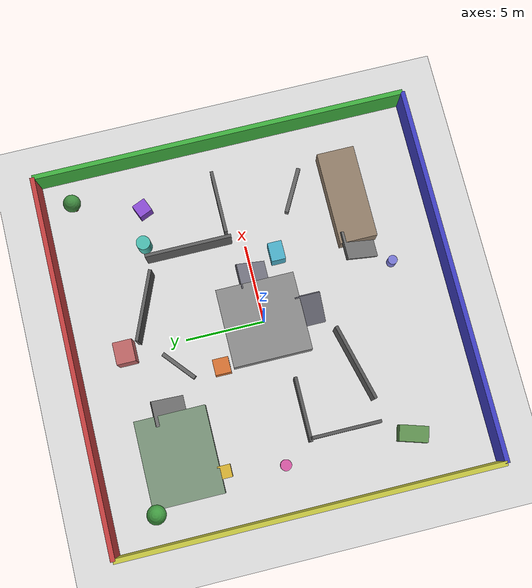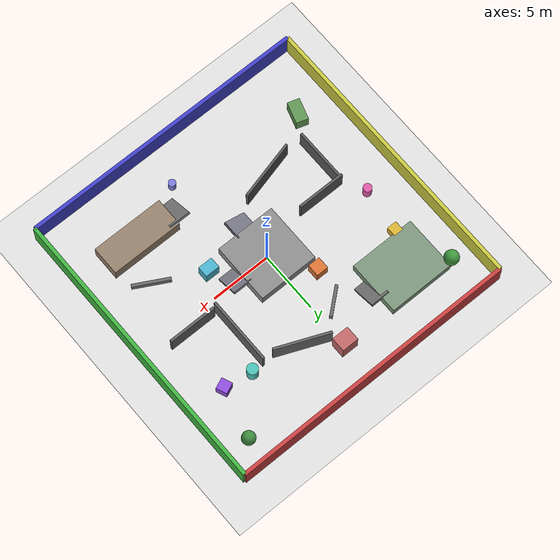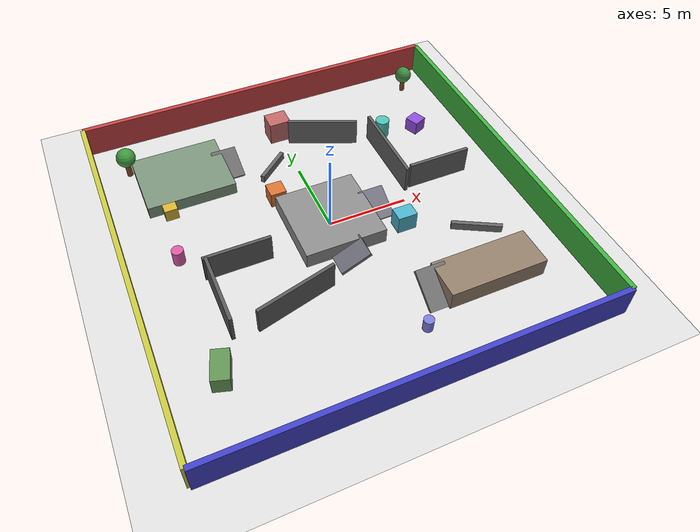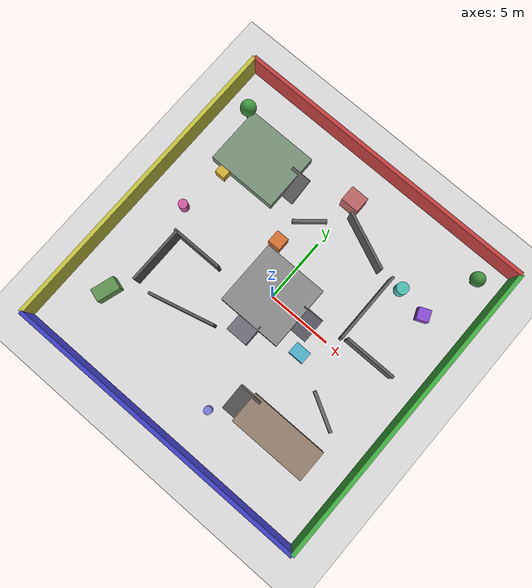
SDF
<?xml version="1.0" ?>
<sdf version="1.8">
  <world name="large_env">

    <!-- Physics -->
    <physics name="1ms" type="ignored">
      <max_step_size>0.001</max_step_size>
      <real_time_factor>1.0</real_time_factor>
    </physics>

    <!-- Gazebo systems -->
    <plugin filename="ignition-gazebo-physics-system"
            name="ignition::gazebo::systems::Physics"/>
    <plugin filename="ignition-gazebo-user-commands-system"
            name="ignition::gazebo::systems::UserCommands"/>
    <plugin filename="ignition-gazebo-scene-broadcaster-system"
            name="ignition::gazebo::systems::SceneBroadcaster"/>
    <plugin filename="ignition-gazebo-sensors-system"
            name="ignition::gazebo::systems::Sensors">
      <render_engine>ogre2</render_engine>
    </plugin>

    <!-- Light -->
    <light name="sun" type="directional">
      <cast_shadows>true</cast_shadows>
      <pose>0 0 25 0 0 0</pose>
      <diffuse>0.95 0.95 0.95 1</diffuse>
      <specular>0.20 0.20 0.20 1</specular>
      <direction>-0.35 0.2 -0.9</direction>
    </light>

    <!-- MAIN GROUND -->
    <model name="ground_plane">
      <static>true</static>
      <link name="link">
        <collision name="collision">
          <geometry>
            <plane>
              <normal>0 0 1</normal>
              <size>60 60</size>
            </plane>
          </geometry>
        </collision>
        <visual name="visual">
          <geometry>
            <plane>
              <normal>0 0 1</normal>
              <size>60 60</size>
            </plane>
          </geometry>
          <material>
            <ambient>0.80 0.80 0.80 1</ambient>
            <diffuse>0.87 0.87 0.87 1</diffuse>
            <specular>0.05 0.05 0.05 1</specular>
          </material>
        </visual>
      </link>
    </model>

    <!-- OUTER WALLS -->
    <!-- Map boundary approx: x,y in [-12, 12] -->
    <model name="wall_north">
      <static>true</static>
      <pose>0 12 1.0 0 0 0</pose>
      <link name="link">
        <collision name="collision">
          <geometry><box><size>24 0.3 2.0</size></box></geometry>
        </collision>
        <visual name="visual">
          <geometry><box><size>24 0.3 2.0</size></box></geometry>
          <material>
            <ambient>0.62 0.20 0.20 1</ambient>
            <diffuse>0.78 0.25 0.25 1</diffuse>
            <specular>0.08 0.08 0.08 1</specular>
          </material>
        </visual>
      </link>
    </model>

    <model name="wall_south">
      <static>true</static>
      <pose>0 -12 1.0 0 0 0</pose>
      <link name="link">
        <collision name="collision">
          <geometry><box><size>24 0.3 2.0</size></box></geometry>
        </collision>
        <visual name="visual">
          <geometry><box><size>24 0.3 2.0</size></box></geometry>
          <material>
            <ambient>0.20 0.20 0.62 1</ambient>
            <diffuse>0.25 0.25 0.78 1</diffuse>
            <specular>0.08 0.08 0.08 1</specular>
          </material>
        </visual>
      </link>
    </model>

    <model name="wall_east">
      <static>true</static>
      <pose>12 0 1.0 0 0 0</pose>
      <link name="link">
        <collision name="collision">
          <geometry><box><size>0.3 24 2.0</size></box></geometry>
        </collision>
        <visual name="visual">
          <geometry><box><size>0.3 24 2.0</size></box></geometry>
          <material>
            <ambient>0.20 0.55 0.20 1</ambient>
            <diffuse>0.25 0.70 0.25 1</diffuse>
            <specular>0.08 0.08 0.08 1</specular>
          </material>
        </visual>
      </link>
    </model>

    <model name="wall_west">
      <static>true</static>
      <pose>-12 0 1.0 0 0 0</pose>
      <link name="link">
        <collision name="collision">
          <geometry><box><size>0.3 24 2.0</size></box></geometry>
        </collision>
        <visual name="visual">
          <geometry><box><size>0.3 24 2.0</size></box></geometry>
          <material>
            <ambient>0.62 0.62 0.20 1</ambient>
            <diffuse>0.78 0.78 0.25 1</diffuse>
            <specular>0.08 0.08 0.08 1</specular>
          </material>
        </visual>
      </link>
    </model>

    <!-- CENTRAL RAISED PLATFORM -->
    <!-- top at z = 1.0 -->
    <model name="central_platform">
      <static>true</static>
      <pose>0 0 0.5 0 0 0</pose>
      <link name="link">
        <collision name="collision">
          <geometry><box><size>5.0 5.0 1.0</size></box></geometry>
        </collision>
        <visual name="visual">
          <geometry><box><size>5.0 5.0 1.0</size></box></geometry>
          <material>
            <ambient>0.45 0.45 0.45 1</ambient>
            <diffuse>0.55 0.55 0.55 1</diffuse>
            <specular>0.08 0.08 0.08 1</specular>
          </material>
        </visual>
      </link>
    </model>

    <!-- Ramps to central platform -->
    <!-- Ramp dimensions: length 2.0, height 1.0 -->
    <!-- pitch ~= atan(1/2) = 0.463648 -->
    <model name="ramp_south_to_platform">
      <static>true</static>
      <pose>0 -3.0 0.5 0 -0.463648 0</pose>
      <link name="link">
        <collision name="collision">
          <geometry><box><size>2.0 1.6 0.2</size></box></geometry>
        </collision>
        <visual name="visual">
          <geometry><box><size>2.0 1.6 0.2</size></box></geometry>
          <material>
            <ambient>0.35 0.35 0.38 1</ambient>
            <diffuse>0.45 0.45 0.50 1</diffuse>
            <specular>0.08 0.08 0.08 1</specular>
          </material>
        </visual>
      </link>
    </model>

    <model name="ramp_east_to_platform">
      <static>true</static>
      <pose>3.0 0 0.5 0 -0.463648 1.5708</pose>
      <link name="link">
        <collision name="collision">
          <geometry><box><size>2.0 1.6 0.2</size></box></geometry>
        </collision>
        <visual name="visual">
          <geometry><box><size>2.0 1.6 0.2</size></box></geometry>
          <material>
            <ambient>0.35 0.35 0.38 1</ambient>
            <diffuse>0.45 0.45 0.50 1</diffuse>
            <specular>0.08 0.08 0.08 1</specular>
          </material>
        </visual>
      </link>
    </model>

    <!-- NORTH-WEST TERRACE -->
    <!-- elevated zone -->
    <model name="nw_terrace">
      <static>true</static>
      <pose>-7.0 7.0 0.4 0 0 0</pose>
      <link name="link">
        <collision name="collision">
          <geometry><box><size>5.5 4.5 0.8</size></box></geometry>
        </collision>
        <visual name="visual">
          <geometry><box><size>5.5 4.5 0.8</size></box></geometry>
          <material>
            <ambient>0.40 0.46 0.40 1</ambient>
            <diffuse>0.48 0.58 0.48 1</diffuse>
            <specular>0.05 0.05 0.05 1</specular>
          </material>
        </visual>
      </link>
    </model>

    <model name="nw_terrace_ramp">
      <static>true</static>
      <pose>-4.1 7.0 0.4 0 -0.380506 1.5708</pose>
      <link name="link">
        <collision name="collision">
          <geometry><box><size>2.1 1.6 0.2</size></box></geometry>
        </collision>
        <visual name="visual">
          <geometry><box><size>2.1 1.6 0.2</size></box></geometry>
          <material>
            <ambient>0.32 0.32 0.32 1</ambient>
            <diffuse>0.42 0.42 0.42 1</diffuse>
            <specular>0.05 0.05 0.05 1</specular>
          </material>
        </visual>
      </link>
    </model>

    <!-- SOUTH-EAST LONG PLATFORM -->
    <model name="se_platform">
      <static>true</static>
      <pose>6.5 -7.0 0.6 0 0 0</pose>
      <link name="link">
        <collision name="collision">
          <geometry><box><size>6.0 2.4 1.2</size></box></geometry>
        </collision>
        <visual name="visual">
          <geometry><box><size>6.0 2.4 1.2</size></box></geometry>
          <material>
            <ambient>0.48 0.42 0.36 1</ambient>
            <diffuse>0.58 0.50 0.42 1</diffuse>
            <specular>0.05 0.05 0.05 1</specular>
          </material>
        </visual>
      </link>
    </model>

    <model name="se_platform_ramp_west">
      <static>true</static>
      <pose>3.3 -7.0 0.6 0 -0.54042 1.5708</pose>
      <link name="link">
        <collision name="collision">
          <geometry><box><size>2.4 1.8 0.2</size></box></geometry>
        </collision>
        <visual name="visual">
          <geometry><box><size>2.4 1.8 0.2</size></box></geometry>
          <material>
            <ambient>0.34 0.34 0.34 1</ambient>
            <diffuse>0.44 0.44 0.44 1</diffuse>
            <specular>0.05 0.05 0.05 1</specular>
          </material>
        </visual>
      </link>
    </model>

    <!-- CORRIDOR / MAZE-LIKE WALLS -->
    <model name="corridor_wall_1">
      <static>true</static>
      <pose>-6.0 -1.0 0.9 0 0 0.0</pose>
      <link name="link">
        <collision name="collision">
          <geometry><box><size>4.0 0.2 1.8</size></box></geometry>
        </collision>
        <visual name="visual">
          <geometry><box><size>4.0 0.2 1.8</size></box></geometry>
          <material>
            <ambient>0.25 0.25 0.25 1</ambient>
            <diffuse>0.35 0.35 0.35 1</diffuse>
            <specular>0.05 0.05 0.05 1</specular>
          </material>
        </visual>
      </link>
    </model>

    <model name="corridor_wall_2">
      <static>true</static>
      <pose>-7.8 -3.2 0.9 0 0 1.5708</pose>
      <link name="link">
        <collision name="collision">
          <geometry><box><size>4.4 0.2 1.8</size></box></geometry>
        </collision>
        <visual name="visual">
          <geometry><box><size>4.4 0.2 1.8</size></box></geometry>
          <material>
            <ambient>0.25 0.25 0.25 1</ambient>
            <diffuse>0.35 0.35 0.35 1</diffuse>
            <specular>0.05 0.05 0.05 1</specular>
          </material>
        </visual>
      </link>
    </model>

    <model name="corridor_wall_3">
      <static>true</static>
      <pose>-4.0 -4.8 0.9 0 0 0.25</pose>
      <link name="link">
        <collision name="collision">
          <geometry><box><size>5.0 0.2 1.8</size></box></geometry>
        </collision>
        <visual name="visual">
          <geometry><box><size>5.0 0.2 1.8</size></box></geometry>
          <material>
            <ambient>0.25 0.25 0.25 1</ambient>
            <diffuse>0.35 0.35 0.35 1</diffuse>
            <specular>0.05 0.05 0.05 1</specular>
          </material>
        </visual>
      </link>
    </model>

    <model name="corridor_wall_4">
      <static>true</static>
      <pose>5.5 3.5 0.9 0 0 1.5708</pose>
      <link name="link">
        <collision name="collision">
          <geometry><box><size>5.5 0.2 1.8</size></box></geometry>
        </collision>
        <visual name="visual">
          <geometry><box><size>5.5 0.2 1.8</size></box></geometry>
          <material>
            <ambient>0.28 0.28 0.28 1</ambient>
            <diffuse>0.38 0.38 0.38 1</diffuse>
            <specular>0.05 0.05 0.05 1</specular>
          </material>
        </visual>
      </link>
    </model>

    <model name="corridor_wall_5">
      <static>true</static>
      <pose>7.8 1.0 0.9 0 0 0.0</pose>
      <link name="link">
        <collision name="collision">
          <geometry><box><size>4.0 0.2 1.8</size></box></geometry>
        </collision>
        <visual name="visual">
          <geometry><box><size>4.0 0.2 1.8</size></box></geometry>
          <material>
            <ambient>0.28 0.28 0.28 1</ambient>
            <diffuse>0.38 0.38 0.38 1</diffuse>
            <specular>0.05 0.05 0.05 1</specular>
          </material>
        </visual>
      </link>
    </model>

    <model name="corridor_wall_6">
      <static>true</static>
      <pose>2.5 7.0 0.9 0 0 -0.4</pose>
      <link name="link">
        <collision name="collision">
          <geometry><box><size>4.5 0.2 1.8</size></box></geometry>
        </collision>
        <visual name="visual">
          <geometry><box><size>4.5 0.2 1.8</size></box></geometry>
          <material>
            <ambient>0.28 0.28 0.28 1</ambient>
            <diffuse>0.38 0.38 0.38 1</diffuse>
            <specular>0.05 0.05 0.05 1</specular>
          </material>
        </visual>
      </link>
    </model>

    <!-- BOX OBSTACLES -->
    <model name="box_1">
      <static>true</static>
      <pose>-2.2 3.2 0.5 0 0 0</pose>
      <link name="link">
        <collision name="collision"><geometry><box><size>1.0 1.0 1.0</size></box></geometry></collision>
        <visual name="visual"><geometry><box><size>1.0 1.0 1.0</size></box></geometry>
          <material>
            <ambient>0.70 0.35 0.15 1</ambient>
            <diffuse>0.85 0.45 0.20 1</diffuse>
            <specular>0.05 0.05 0.05 1</specular>
          </material>
        </visual>
      </link>
    </model>

    <model name="box_2">
      <static>true</static>
      <pose>4.0 -1.8 0.6 0 0 0</pose>
      <link name="link">
        <collision name="collision"><geometry><box><size>1.2 0.9 1.2</size></box></geometry></collision>
        <visual name="visual"><geometry><box><size>1.2 0.9 1.2</size></box></geometry>
          <material>
            <ambient>0.25 0.55 0.65 1</ambient>
            <diffuse>0.30 0.70 0.80 1</diffuse>
            <specular>0.05 0.05 0.05 1</specular>
          </material>
        </visual>
      </link>
    </model>

    <model name="box_3">
      <static>true</static>
      <pose>8.8 5.8 0.45 0 0 0.4</pose>
      <link name="link">
        <collision name="collision"><geometry><box><size>0.9 0.9 0.9</size></box></geometry></collision>
        <visual name="visual"><geometry><box><size>0.9 0.9 0.9</size></box></geometry>
          <material>
            <ambient>0.45 0.25 0.70 1</ambient>
            <diffuse>0.55 0.30 0.85 1</diffuse>
            <specular>0.05 0.05 0.05 1</specular>
          </material>
        </visual>
      </link>
    </model>

    <model name="box_4">
      <static>true</static>
      <pose>-8.5 4.5 0.4 0 0 0</pose>
      <link name="link">
        <collision name="collision"><geometry><box><size>0.8 0.8 0.8</size></box></geometry></collision>
        <visual name="visual"><geometry><box><size>0.8 0.8 0.8</size></box></geometry>
          <material>
            <ambient>0.70 0.55 0.15 1</ambient>
            <diffuse>0.85 0.70 0.20 1</diffuse>
            <specular>0.05 0.05 0.05 1</specular>
          </material>
        </visual>
      </link>
    </model>

    <model name="box_5">
      <static>true</static>
      <pose>0.0 8.8 0.75 0 0 0</pose>
      <link name="link">
        <collision name="collision"><geometry><box><size>1.4 1.2 1.5</size></box></geometry></collision>
        <visual name="visual"><geometry><box><size>1.4 1.2 1.5</size></box></geometry>
          <material>
            <ambient>0.62 0.32 0.32 1</ambient>
            <diffuse>0.75 0.40 0.40 1</diffuse>
            <specular>0.05 0.05 0.05 1</specular>
          </material>
        </visual>
      </link>
    </model>

    <model name="box_6">
      <static>true</static>
      <pose>-9.0 -7.2 0.55 0 0 -0.3</pose>
      <link name="link">
        <collision name="collision"><geometry><box><size>1.0 1.8 1.1</size></box></geometry></collision>
        <visual name="visual"><geometry><box><size>1.0 1.8 1.1</size></box></geometry>
          <material>
            <ambient>0.30 0.45 0.25 1</ambient>
            <diffuse>0.38 0.58 0.32 1</diffuse>
            <specular>0.05 0.05 0.05 1</specular>
          </material>
        </visual>
      </link>
    </model>

    <!-- CYLINDER / PILLAR OBSTACLES -->
    <model name="cylinder_1">
      <static>true</static>
      <pose>6.5 6.2 0.6 0 0 0</pose>
      <link name="link">
        <collision name="collision">
          <geometry><cylinder><radius>0.45</radius><length>1.2</length></cylinder></geometry>
        </collision>
        <visual name="visual">
          <geometry><cylinder><radius>0.45</radius><length>1.2</length></cylinder></geometry>
          <material>
            <ambient>0.25 0.60 0.55 1</ambient>
            <diffuse>0.30 0.75 0.70 1</diffuse>
            <specular>0.05 0.05 0.05 1</specular>
          </material>
        </visual>
      </link>
    </model>

    <model name="cylinder_2">
      <static>true</static>
      <pose>-9.0 0.8 0.5 0 0 0</pose>
      <link name="link">
        <collision name="collision">
          <geometry><cylinder><radius>0.35</radius><length>1.0</length></cylinder></geometry>
        </collision>
        <visual name="visual">
          <geometry><cylinder><radius>0.35</radius><length>1.0</length></cylinder></geometry>
          <material>
            <ambient>0.70 0.30 0.55 1</ambient>
            <diffuse>0.85 0.35 0.65 1</diffuse>
            <specular>0.05 0.05 0.05 1</specular>
          </material>
        </visual>
      </link>
    </model>

    <model name="cylinder_3">
      <static>true</static>
      <pose>1.8 -8.8 0.4 0 0 0</pose>
      <link name="link">
        <collision name="collision">
          <geometry><cylinder><radius>0.30</radius><length>0.8</length></cylinder></geometry>
        </collision>
        <visual name="visual">
          <geometry><cylinder><radius>0.30</radius><length>0.8</length></cylinder></geometry>
          <material>
            <ambient>0.40 0.40 0.70 1</ambient>
            <diffuse>0.48 0.48 0.85 1</diffuse>
            <specular>0.05 0.05 0.05 1</specular>
          </material>
        </visual>
      </link>
    </model>

    <!-- LOW BARRIERS / NAVIGATION FEATURES -->
    <model name="low_barrier_1">
      <static>true</static>
      <pose>-1.5 5.8 0.25 0 0 0.7</pose>
      <link name="link">
        <collision name="collision"><geometry><box><size>2.5 0.25 0.5</size></box></geometry></collision>
        <visual name="visual"><geometry><box><size>2.5 0.25 0.5</size></box></geometry>
          <material>
            <ambient>0.30 0.30 0.30 1</ambient>
            <diffuse>0.40 0.40 0.40 1</diffuse>
            <specular>0.04 0.04 0.04 1</specular>
          </material>
        </visual>
      </link>
    </model>

    <model name="low_barrier_2">
      <static>true</static>
      <pose>7.8 -3.8 0.25 0 0 -0.5</pose>
      <link name="link">
        <collision name="collision"><geometry><box><size>3.0 0.25 0.5</size></box></geometry></collision>
        <visual name="visual"><geometry><box><size>3.0 0.25 0.5</size></box></geometry>
          <material>
            <ambient>0.30 0.30 0.30 1</ambient>
            <diffuse>0.40 0.40 0.40 1</diffuse>
            <specular>0.04 0.04 0.04 1</specular>
          </material>
        </visual>
      </link>
    </model>

    <!-- DECORATIVE "TREE-LIKE" OBJECTS (primitive only) -->
    <!-- trunk + canopy -->
    <model name="tree_1_trunk">
      <static>true</static>
      <pose>-10.0 9.0 0.5 0 0 0</pose>
      <link name="link">
        <collision name="collision">
          <geometry><cylinder><radius>0.18</radius><length>1.0</length></cylinder></geometry>
        </collision>
        <visual name="visual">
          <geometry><cylinder><radius>0.18</radius><length>1.0</length></cylinder></geometry>
          <material>
            <ambient>0.40 0.24 0.12 1</ambient>
            <diffuse>0.50 0.30 0.15 1</diffuse>
            <specular>0.02 0.02 0.02 1</specular>
          </material>
        </visual>
      </link>
    </model>

    <model name="tree_1_canopy">
      <static>true</static>
      <pose>-10.0 9.0 1.45 0 0 0</pose>
      <link name="link">
        <collision name="collision">
          <geometry><sphere><radius>0.6</radius></sphere></geometry>
        </collision>
        <visual name="visual">
          <geometry><sphere><radius>0.6</radius></sphere></geometry>
          <material>
            <ambient>0.20 0.45 0.20 1</ambient>
            <diffuse>0.25 0.60 0.25 1</diffuse>
            <specular>0.02 0.02 0.02 1</specular>
          </material>
        </visual>
      </link>
    </model>

    <model name="tree_2_trunk">
      <static>true</static>
      <pose>10.0 10.0 0.45 0 0 0</pose>
      <link name="link">
        <collision name="collision">
          <geometry><cylinder><radius>0.16</radius><length>0.9</length></cylinder></geometry>
        </collision>
        <visual name="visual">
          <geometry><cylinder><radius>0.16</radius><length>0.9</length></cylinder></geometry>
          <material>
            <ambient>0.40 0.24 0.12 1</ambient>
            <diffuse>0.50 0.30 0.15 1</diffuse>
            <specular>0.02 0.02 0.02 1</specular>
          </material>
        </visual>
      </link>
    </model>

    <model name="tree_2_canopy">
      <static>true</static>
      <pose>10.0 10.0 1.3 0 0 0</pose>
      <link name="link">
        <collision name="collision">
          <geometry><sphere><radius>0.55</radius></sphere></geometry>
        </collision>
        <visual name="visual">
          <geometry><sphere><radius>0.55</radius></sphere></geometry>
          <material>
            <ambient>0.20 0.42 0.20 1</ambient>
            <diffuse>0.25 0.55 0.25 1</diffuse>
            <specular>0.02 0.02 0.02 1</specular>
          </material>
        </visual>
      </link>
    </model>

  </world>
</sdf>
